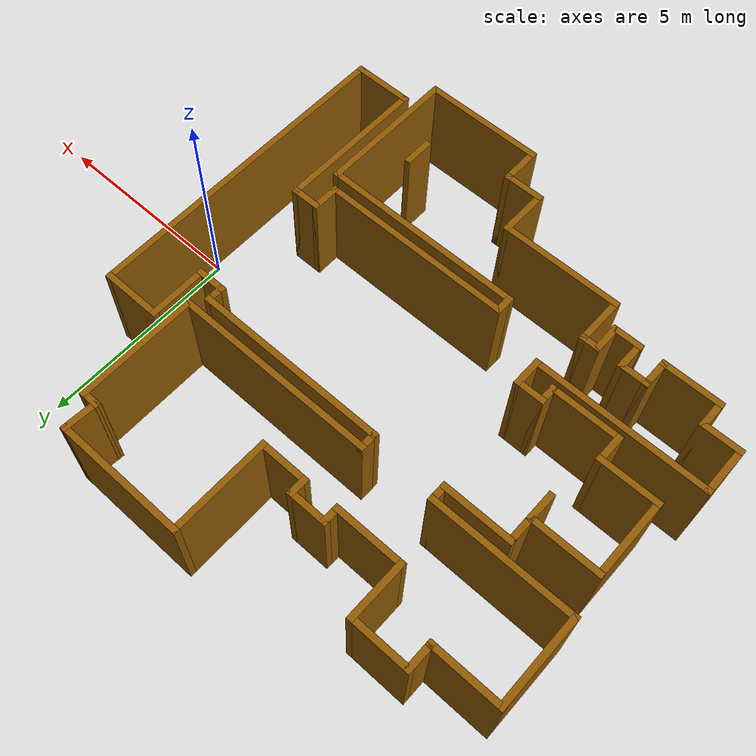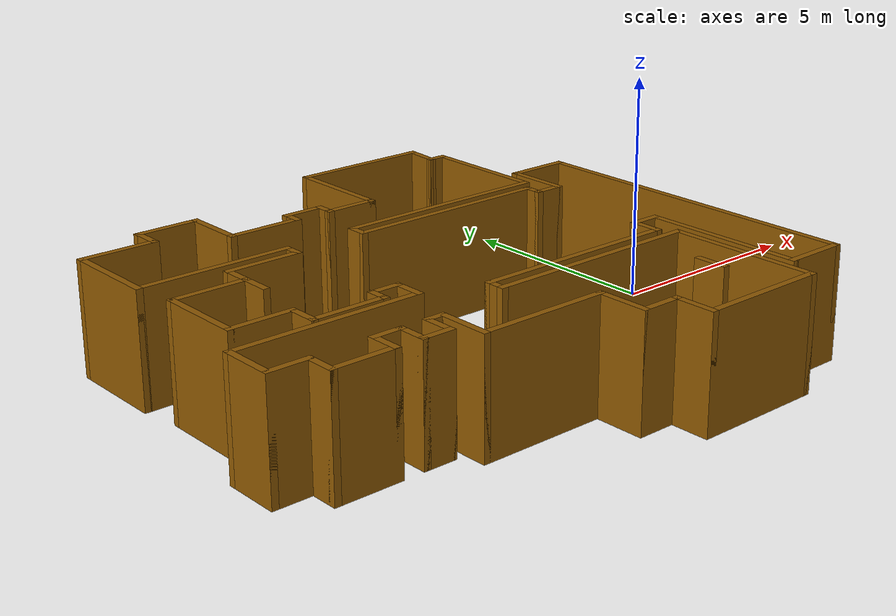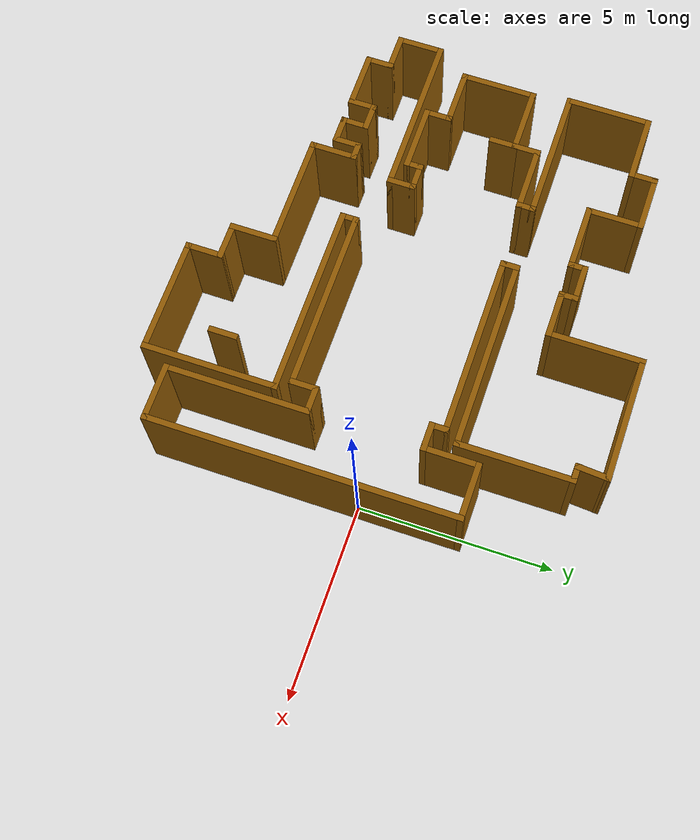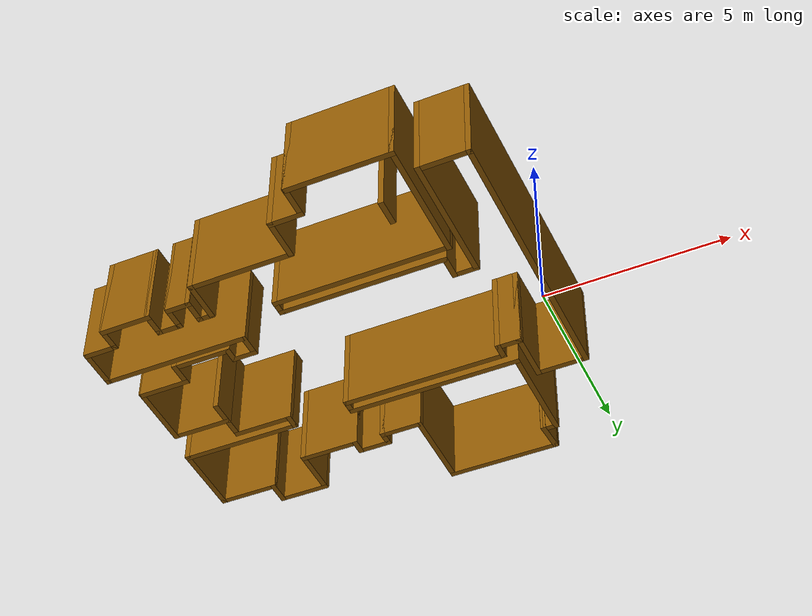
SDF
<?xml version='1.0'?>
<sdf version='1.6'>
  <model name='map_138'>
    <pose frame=''>-5.81102 -0.16081 0 0 -0 0</pose>
    <link name='Wall_0'>
      <collision name='Wall_0_Collision'>
        <geometry>
          <box>
            <size>3.25 0.15 2.5</size>
          </box>
        </geometry>
        <pose frame=''>0 0 1.25 0 -0 0</pose>
      </collision>
      <visual name='Wall_0_Visual'>
        <pose frame=''>0 0 1.25 0 -0 0</pose>
        <geometry>
          <box>
            <size>3.25 0.15 2.5</size>
          </box>
        </geometry>
        <material>
          <script>
            <uri>file://media/materials/scripts/gazebo.material</uri>
            <name>Gazebo/Grey</name>
          </script>
          <ambient>0.560784 0.34902 0.00784314 1</ambient>
        </material>
        <meta>
          <layer>0</layer>
        </meta>
      </visual>
      <pose frame=''>2.45 5.74759 0 0 -0 3.14159</pose>
    </link>
    <link name='Wall_1'>
      <collision name='Wall_1_Collision'>
        <geometry>
          <box>
            <size>2.5 0.15 2.5</size>
          </box>
        </geometry>
        <pose frame=''>0 0 1.25 0 -0 0</pose>
      </collision>
      <visual name='Wall_1_Visual'>
        <pose frame=''>0 0 1.25 0 -0 0</pose>
        <geometry>
          <box>
            <size>2.5 0.15 2.5</size>
          </box>
        </geometry>
        <material>
          <script>
            <uri>file://media/materials/scripts/gazebo.material</uri>
            <name>Gazebo/Grey</name>
          </script>
          <ambient>0.560784 0.34902 0.00784314 1</ambient>
        </material>
        <meta>
          <layer>0</layer>
        </meta>
      </visual>
      <pose frame=''>0.9 4.57259 0 0 -0 -1.5708</pose>
    </link>
    <link name='Wall_10'>
      <collision name='Wall_10_Collision'>
        <geometry>
          <box>
            <size>1.75 0.15 2.5</size>
          </box>
        </geometry>
        <pose frame=''>0 0 1.25 0 -0 0</pose>
      </collision>
      <visual name='Wall_10_Visual'>
        <pose frame=''>0 0 1.25 0 -0 0</pose>
        <geometry>
          <box>
            <size>1.75 0.15 2.5</size>
          </box>
        </geometry>
        <material>
          <script>
            <uri>file://media/materials/scripts/gazebo.material</uri>
            <name>Gazebo/Grey</name>
          </script>
          <ambient>0.560784 0.34902 0.00784314 1</ambient>
        </material>
        <meta>
          <layer>0</layer>
        </meta>
      </visual>
      <pose frame=''>-4.8 4.14759 0 0 -0 3.14159</pose>
    </link>
    <link name='Wall_11'>
      <collision name='Wall_11_Collision'>
        <geometry>
          <box>
            <size>2.25 0.15 2.5</size>
          </box>
        </geometry>
        <pose frame=''>0 0 1.25 0 -0 0</pose>
      </collision>
      <visual name='Wall_11_Visual'>
        <pose frame=''>0 0 1.25 0 -0 0</pose>
        <geometry>
          <box>
            <size>2.25 0.15 2.5</size>
          </box>
        </geometry>
        <material>
          <script>
            <uri>file://media/materials/scripts/gazebo.material</uri>
            <name>Gazebo/Grey</name>
          </script>
          <ambient>0.560784 0.34902 0.00784314 1</ambient>
        </material>
        <meta>
          <layer>0</layer>
        </meta>
      </visual>
      <pose frame=''>-5.6 3.09759 0 0 -0 -1.5708</pose>
    </link>
    <link name='Wall_12'>
      <collision name='Wall_12_Collision'>
        <geometry>
          <box>
            <size>3.5 0.15 2.5</size>
          </box>
        </geometry>
        <pose frame=''>0 0 1.25 0 -0 0</pose>
      </collision>
      <visual name='Wall_12_Visual'>
        <pose frame=''>0 0 1.25 0 -0 0</pose>
        <geometry>
          <box>
            <size>3.5 0.15 2.5</size>
          </box>
        </geometry>
        <material>
          <script>
            <uri>file://media/materials/scripts/gazebo.material</uri>
            <name>Gazebo/Grey</name>
          </script>
          <ambient>0.560784 0.34902 0.00784314 1</ambient>
        </material>
        <meta>
          <layer>0</layer>
        </meta>
      </visual>
      <pose frame=''>-3.925 2.04759 0 0 -0 0</pose>
    </link>
    <link name='Wall_13'>
      <collision name='Wall_13_Collision'>
        <geometry>
          <box>
            <size>0.5 0.15 2.5</size>
          </box>
        </geometry>
        <pose frame=''>0 0 1.25 0 -0 0</pose>
      </collision>
      <visual name='Wall_13_Visual'>
        <pose frame=''>0 0 1.25 0 -0 0</pose>
        <geometry>
          <box>
            <size>0.5 0.15 2.5</size>
          </box>
        </geometry>
        <material>
          <script>
            <uri>file://media/materials/scripts/gazebo.material</uri>
            <name>Gazebo/Grey</name>
          </script>
          <ambient>0.560784 0.34902 0.00784314 1</ambient>
        </material>
        <meta>
          <layer>0</layer>
        </meta>
      </visual>
      <pose frame=''>-2.25 1.87259 0 0 -0 -1.5708</pose>
    </link>
    <link name='Wall_14'>
      <collision name='Wall_14_Collision'>
        <geometry>
          <box>
            <size>1.75 0.15 2.5</size>
          </box>
        </geometry>
        <pose frame=''>0 0 1.25 0 -0 0</pose>
      </collision>
      <visual name='Wall_14_Visual'>
        <pose frame=''>0 0 1.25 0 -0 0</pose>
        <geometry>
          <box>
            <size>1.75 0.15 2.5</size>
          </box>
        </geometry>
        <material>
          <script>
            <uri>file://media/materials/scripts/gazebo.material</uri>
            <name>Gazebo/Grey</name>
          </script>
          <ambient>0.560784 0.34902 0.00784314 1</ambient>
        </material>
        <meta>
          <layer>0</layer>
        </meta>
      </visual>
      <pose frame=''>-3.05 1.69759 0 0 -0 3.14159</pose>
    </link>
    <link name='Wall_15'>
      <collision name='Wall_15_Collision'>
        <geometry>
          <box>
            <size>0.75 0.15 2.5</size>
          </box>
        </geometry>
        <pose frame=''>0 0 1.25 0 -0 0</pose>
      </collision>
      <visual name='Wall_15_Visual'>
        <pose frame=''>0 0 1.25 0 -0 0</pose>
        <geometry>
          <box>
            <size>0.75 0.15 2.5</size>
          </box>
        </geometry>
        <material>
          <script>
            <uri>file://media/materials/scripts/gazebo.material</uri>
            <name>Gazebo/Grey</name>
          </script>
          <ambient>0.560784 0.34902 0.00784314 1</ambient>
        </material>
        <meta>
          <layer>0</layer>
        </meta>
      </visual>
      <pose frame=''>-3.85 1.39759 0 0 -0 -1.5708</pose>
    </link>
    <link name='Wall_16'>
      <collision name='Wall_16_Collision'>
        <geometry>
          <box>
            <size>1.75 0.15 2.5</size>
          </box>
        </geometry>
        <pose frame=''>0 0 1.25 0 -0 0</pose>
      </collision>
      <visual name='Wall_16_Visual'>
        <pose frame=''>0 0 1.25 0 -0 0</pose>
        <geometry>
          <box>
            <size>1.75 0.15 2.5</size>
          </box>
        </geometry>
        <material>
          <script>
            <uri>file://media/materials/scripts/gazebo.material</uri>
            <name>Gazebo/Grey</name>
          </script>
          <ambient>0.560784 0.34902 0.00784314 1</ambient>
        </material>
        <meta>
          <layer>0</layer>
        </meta>
      </visual>
      <pose frame=''>-4.65 1.09759 0 0 -0 3.14159</pose>
    </link>
    <link name='Wall_17'>
      <collision name='Wall_17_Collision'>
        <geometry>
          <box>
            <size>2 0.15 2.5</size>
          </box>
        </geometry>
        <pose frame=''>0 0 1.25 0 -0 0</pose>
      </collision>
      <visual name='Wall_17_Visual'>
        <pose frame=''>0 0 1.25 0 -0 0</pose>
        <geometry>
          <box>
            <size>2 0.15 2.5</size>
          </box>
        </geometry>
        <material>
          <script>
            <uri>file://media/materials/scripts/gazebo.material</uri>
            <name>Gazebo/Grey</name>
          </script>
          <ambient>0.560784 0.34902 0.00784314 1</ambient>
        </material>
        <meta>
          <layer>0</layer>
        </meta>
      </visual>
      <pose frame=''>-5.45 0.172589 0 0 -0 -1.5708</pose>
    </link>
    <link name='Wall_18'>
      <collision name='Wall_18_Collision'>
        <geometry>
          <box>
            <size>1.5 0.15 2.5</size>
          </box>
        </geometry>
        <pose frame=''>0 0 1.25 0 -0 0</pose>
      </collision>
      <visual name='Wall_18_Visual'>
        <pose frame=''>0 0 1.25 0 -0 0</pose>
        <geometry>
          <box>
            <size>1.5 0.15 2.5</size>
          </box>
        </geometry>
        <material>
          <script>
            <uri>file://media/materials/scripts/gazebo.material</uri>
            <name>Gazebo/Grey</name>
          </script>
          <ambient>0.560784 0.34902 0.00784314 1</ambient>
        </material>
        <meta>
          <layer>0</layer>
        </meta>
      </visual>
      <pose frame=''>-4.775 -0.752411 0 0 -0 0</pose>
    </link>
    <link name='Wall_19'>
      <collision name='Wall_19_Collision'>
        <geometry>
          <box>
            <size>0.75 0.15 2.5</size>
          </box>
        </geometry>
        <pose frame=''>0 0 1.25 0 -0 0</pose>
      </collision>
      <visual name='Wall_19_Visual'>
        <pose frame=''>0 0 1.25 0 -0 0</pose>
        <geometry>
          <box>
            <size>0.75 0.15 2.5</size>
          </box>
        </geometry>
        <material>
          <script>
            <uri>file://media/materials/scripts/gazebo.material</uri>
            <name>Gazebo/Grey</name>
          </script>
          <ambient>0.560784 0.34902 0.00784314 1</ambient>
        </material>
        <meta>
          <layer>0</layer>
        </meta>
      </visual>
      <pose frame=''>-4.1 -1.05241 0 0 -0 -1.5708</pose>
    </link>
    <link name='Wall_2'>
      <collision name='Wall_2_Collision'>
        <geometry>
          <box>
            <size>1.25 0.15 2.5</size>
          </box>
        </geometry>
        <pose frame=''>0 0 1.25 0 -0 0</pose>
      </collision>
      <visual name='Wall_2_Visual'>
        <pose frame=''>0 0 1.25 0 -0 0</pose>
        <geometry>
          <box>
            <size>1.25 0.15 2.5</size>
          </box>
        </geometry>
        <material>
          <script>
            <uri>file://media/materials/scripts/gazebo.material</uri>
            <name>Gazebo/Grey</name>
          </script>
          <ambient>0.560784 0.34902 0.00784314 1</ambient>
        </material>
        <meta>
          <layer>0</layer>
        </meta>
      </visual>
      <pose frame=''>0.35 3.39759 0 0 -0 3.14159</pose>
    </link>
    <link name='Wall_20'>
      <collision name='Wall_20_Collision'>
        <geometry>
          <box>
            <size>1.75 0.15 2.5</size>
          </box>
        </geometry>
        <pose frame=''>0 0 1.25 0 -0 0</pose>
      </collision>
      <visual name='Wall_20_Visual'>
        <pose frame=''>0 0 1.25 0 -0 0</pose>
        <geometry>
          <box>
            <size>1.75 0.15 2.5</size>
          </box>
        </geometry>
        <material>
          <script>
            <uri>file://media/materials/scripts/gazebo.material</uri>
            <name>Gazebo/Grey</name>
          </script>
          <ambient>0.560784 0.34902 0.00784314 1</ambient>
        </material>
        <meta>
          <layer>0</layer>
        </meta>
      </visual>
      <pose frame=''>-3.3 -1.35241 0 0 -0 0</pose>
    </link>
    <link name='Wall_21'>
      <collision name='Wall_21_Collision'>
        <geometry>
          <box>
            <size>0.5 0.15 2.5</size>
          </box>
        </geometry>
        <pose frame=''>0 0 1.25 0 -0 0</pose>
      </collision>
      <visual name='Wall_21_Visual'>
        <pose frame=''>0 0 1.25 0 -0 0</pose>
        <geometry>
          <box>
            <size>0.5 0.15 2.5</size>
          </box>
        </geometry>
        <material>
          <script>
            <uri>file://media/materials/scripts/gazebo.material</uri>
            <name>Gazebo/Grey</name>
          </script>
          <ambient>0.560784 0.34902 0.00784314 1</ambient>
        </material>
        <meta>
          <layer>0</layer>
        </meta>
      </visual>
      <pose frame=''>-2.5 -1.17741 0 0 -0 1.5708</pose>
    </link>
    <link name='Wall_22'>
      <collision name='Wall_22_Collision'>
        <geometry>
          <box>
            <size>0.75 0.15 2.5</size>
          </box>
        </geometry>
        <pose frame=''>0 0 1.25 0 -0 0</pose>
      </collision>
      <visual name='Wall_22_Visual'>
        <pose frame=''>0 0 1.25 0 -0 0</pose>
        <geometry>
          <box>
            <size>0.75 0.15 2.5</size>
          </box>
        </geometry>
        <material>
          <script>
            <uri>file://media/materials/scripts/gazebo.material</uri>
            <name>Gazebo/Grey</name>
          </script>
          <ambient>0.560784 0.34902 0.00784314 1</ambient>
        </material>
        <meta>
          <layer>0</layer>
        </meta>
      </visual>
      <pose frame=''>-2.2 -1.00241 0 0 -0 0</pose>
    </link>
    <link name='Wall_23'>
      <collision name='Wall_23_Collision'>
        <geometry>
          <box>
            <size>0.75 0.15 2.5</size>
          </box>
        </geometry>
        <pose frame=''>0 0 1.25 0 -0 0</pose>
      </collision>
      <visual name='Wall_23_Visual'>
        <pose frame=''>0 0 1.25 0 -0 0</pose>
        <geometry>
          <box>
            <size>0.75 0.15 2.5</size>
          </box>
        </geometry>
        <material>
          <script>
            <uri>file://media/materials/scripts/gazebo.material</uri>
            <name>Gazebo/Grey</name>
          </script>
          <ambient>0.560784 0.34902 0.00784314 1</ambient>
        </material>
        <meta>
          <layer>0</layer>
        </meta>
      </visual>
      <pose frame=''>-1.9 -1.30241 0 0 -0 -1.5708</pose>
    </link>
    <link name='Wall_24'>
      <collision name='Wall_24_Collision'>
        <geometry>
          <box>
            <size>4.25 0.15 2.5</size>
          </box>
        </geometry>
        <pose frame=''>0 0 1.25 0 -0 0</pose>
      </collision>
      <visual name='Wall_24_Visual'>
        <pose frame=''>0 0 1.25 0 -0 0</pose>
        <geometry>
          <box>
            <size>4.25 0.15 2.5</size>
          </box>
        </geometry>
        <material>
          <script>
            <uri>file://media/materials/scripts/gazebo.material</uri>
            <name>Gazebo/Grey</name>
          </script>
          <ambient>0.560784 0.34902 0.00784314 1</ambient>
        </material>
        <meta>
          <layer>0</layer>
        </meta>
      </visual>
      <pose frame=''>-3.95 -1.60241 0 0 -0 3.14159</pose>
    </link>
    <link name='Wall_25'>
      <collision name='Wall_25_Collision'>
        <geometry>
          <box>
            <size>1.25 0.15 2.5</size>
          </box>
        </geometry>
        <pose frame=''>0 0 1.25 0 -0 0</pose>
      </collision>
      <visual name='Wall_25_Visual'>
        <pose frame=''>0 0 1.25 0 -0 0</pose>
        <geometry>
          <box>
            <size>1.25 0.15 2.5</size>
          </box>
        </geometry>
        <material>
          <script>
            <uri>file://media/materials/scripts/gazebo.material</uri>
            <name>Gazebo/Grey</name>
          </script>
          <ambient>0.560784 0.34902 0.00784314 1</ambient>
        </material>
        <meta>
          <layer>0</layer>
        </meta>
      </visual>
      <pose frame=''>-6 -2.15241 0 0 -0 -1.5708</pose>
    </link>
    <link name='Wall_26'>
      <collision name='Wall_26_Collision'>
        <geometry>
          <box>
            <size>1 0.15 2.5</size>
          </box>
        </geometry>
        <pose frame=''>0 0 1.25 0 -0 0</pose>
      </collision>
      <visual name='Wall_26_Visual'>
        <pose frame=''>0 0 1.25 0 -0 0</pose>
        <geometry>
          <box>
            <size>1 0.15 2.5</size>
          </box>
        </geometry>
        <material>
          <script>
            <uri>file://media/materials/scripts/gazebo.material</uri>
            <name>Gazebo/Grey</name>
          </script>
          <ambient>0.560784 0.34902 0.00784314 1</ambient>
        </material>
        <meta>
          <layer>0</layer>
        </meta>
      </visual>
      <pose frame=''>-5.575 -2.70241 0 0 -0 0</pose>
    </link>
    <link name='Wall_27'>
      <collision name='Wall_27_Collision'>
        <geometry>
          <box>
            <size>0.75 0.15 2.5</size>
          </box>
        </geometry>
        <pose frame=''>0 0 1.25 0 -0 0</pose>
      </collision>
      <visual name='Wall_27_Visual'>
        <pose frame=''>0 0 1.25 0 -0 0</pose>
        <geometry>
          <box>
            <size>0.75 0.15 2.5</size>
          </box>
        </geometry>
        <material>
          <script>
            <uri>file://media/materials/scripts/gazebo.material</uri>
            <name>Gazebo/Grey</name>
          </script>
          <ambient>0.560784 0.34902 0.00784314 1</ambient>
        </material>
        <meta>
          <layer>0</layer>
        </meta>
      </visual>
      <pose frame=''>-5.15 -3.00241 0 0 -0 -1.5708</pose>
    </link>
    <link name='Wall_28'>
      <collision name='Wall_28_Collision'>
        <geometry>
          <box>
            <size>1.5 0.15 2.5</size>
          </box>
        </geometry>
        <pose frame=''>0 0 1.25 0 -0 0</pose>
      </collision>
      <visual name='Wall_28_Visual'>
        <pose frame=''>0 0 1.25 0 -0 0</pose>
        <geometry>
          <box>
            <size>1.5 0.15 2.5</size>
          </box>
        </geometry>
        <material>
          <script>
            <uri>file://media/materials/scripts/gazebo.material</uri>
            <name>Gazebo/Grey</name>
          </script>
          <ambient>0.560784 0.34902 0.00784314 1</ambient>
        </material>
        <meta>
          <layer>0</layer>
        </meta>
      </visual>
      <pose frame=''>-4.475 -3.30241 0 0 -0 0</pose>
    </link>
    <link name='Wall_29'>
      <collision name='Wall_29_Collision'>
        <geometry>
          <box>
            <size>0.75 0.15 2.5</size>
          </box>
        </geometry>
        <pose frame=''>0 0 1.25 0 -0 0</pose>
      </collision>
      <visual name='Wall_29_Visual'>
        <pose frame=''>0 0 1.25 0 -0 0</pose>
        <geometry>
          <box>
            <size>0.75 0.15 2.5</size>
          </box>
        </geometry>
        <material>
          <script>
            <uri>file://media/materials/scripts/gazebo.material</uri>
            <name>Gazebo/Grey</name>
          </script>
          <ambient>0.560784 0.34902 0.00784314 1</ambient>
        </material>
        <meta>
          <layer>0</layer>
        </meta>
      </visual>
      <pose frame=''>-3.8 -3.00241 0 0 -0 1.5708</pose>
    </link>
    <link name='Wall_3'>
      <collision name='Wall_3_Collision'>
        <geometry>
          <box>
            <size>0.5 0.15 2.5</size>
          </box>
        </geometry>
        <pose frame=''>0 0 1.25 0 -0 0</pose>
      </collision>
      <visual name='Wall_3_Visual'>
        <pose frame=''>0 0 1.25 0 -0 0</pose>
        <geometry>
          <box>
            <size>0.5 0.15 2.5</size>
          </box>
        </geometry>
        <material>
          <script>
            <uri>file://media/materials/scripts/gazebo.material</uri>
            <name>Gazebo/Grey</name>
          </script>
          <ambient>0.560784 0.34902 0.00784314 1</ambient>
        </material>
        <meta>
          <layer>0</layer>
        </meta>
      </visual>
      <pose frame=''>-0.2 3.57259 0 0 -0 1.5708</pose>
    </link>
    <link name='Wall_30'>
      <collision name='Wall_30_Collision'>
        <geometry>
          <box>
            <size>0.75 0.15 2.5</size>
          </box>
        </geometry>
        <pose frame=''>0 0 1.25 0 -0 0</pose>
      </collision>
      <visual name='Wall_30_Visual'>
        <pose frame=''>0 0 1.25 0 -0 0</pose>
        <geometry>
          <box>
            <size>0.75 0.15 2.5</size>
          </box>
        </geometry>
        <material>
          <script>
            <uri>file://media/materials/scripts/gazebo.material</uri>
            <name>Gazebo/Grey</name>
          </script>
          <ambient>0.560784 0.34902 0.00784314 1</ambient>
        </material>
        <meta>
          <layer>0</layer>
        </meta>
      </visual>
      <pose frame=''>-3.5 -2.70241 0 0 -0 0</pose>
    </link>
    <link name='Wall_31'>
      <collision name='Wall_31_Collision'>
        <geometry>
          <box>
            <size>0.75 0.15 2.5</size>
          </box>
        </geometry>
        <pose frame=''>0 0 1.25 0 -0 0</pose>
      </collision>
      <visual name='Wall_31_Visual'>
        <pose frame=''>0 0 1.25 0 -0 0</pose>
        <geometry>
          <box>
            <size>0.75 0.15 2.5</size>
          </box>
        </geometry>
        <material>
          <script>
            <uri>file://media/materials/scripts/gazebo.material</uri>
            <name>Gazebo/Grey</name>
          </script>
          <ambient>0.560784 0.34902 0.00784314 1</ambient>
        </material>
        <meta>
          <layer>0</layer>
        </meta>
      </visual>
      <pose frame=''>-3.2 -3.00241 0 0 -0 -1.5708</pose>
    </link>
    <link name='Wall_32'>
      <collision name='Wall_32_Collision'>
        <geometry>
          <box>
            <size>0.75 0.15 2.5</size>
          </box>
        </geometry>
        <pose frame=''>0 0 1.25 0 -0 0</pose>
      </collision>
      <visual name='Wall_32_Visual'>
        <pose frame=''>0 0 1.25 0 -0 0</pose>
        <geometry>
          <box>
            <size>0.75 0.15 2.5</size>
          </box>
        </geometry>
        <material>
          <script>
            <uri>file://media/materials/scripts/gazebo.material</uri>
            <name>Gazebo/Grey</name>
          </script>
          <ambient>0.560784 0.34902 0.00784314 1</ambient>
        </material>
        <meta>
          <layer>0</layer>
        </meta>
      </visual>
      <pose frame=''>-2.9 -3.30241 0 0 -0 0</pose>
    </link>
    <link name='Wall_33'>
      <collision name='Wall_33_Collision'>
        <geometry>
          <box>
            <size>0.75 0.15 2.5</size>
          </box>
        </geometry>
        <pose frame=''>0 0 1.25 0 -0 0</pose>
      </collision>
      <visual name='Wall_33_Visual'>
        <pose frame=''>0 0 1.25 0 -0 0</pose>
        <geometry>
          <box>
            <size>0.75 0.15 2.5</size>
          </box>
        </geometry>
        <material>
          <script>
            <uri>file://media/materials/scripts/gazebo.material</uri>
            <name>Gazebo/Grey</name>
          </script>
          <ambient>0.560784 0.34902 0.00784314 1</ambient>
        </material>
        <meta>
          <layer>0</layer>
        </meta>
      </visual>
      <pose frame=''>-2.6 -3.00241 0 0 -0 1.5708</pose>
    </link>
    <link name='Wall_34'>
      <collision name='Wall_34_Collision'>
        <geometry>
          <box>
            <size>0.5 0.15 2.5</size>
          </box>
        </geometry>
        <pose frame=''>0 0 1.25 0 -0 0</pose>
      </collision>
      <visual name='Wall_34_Visual'>
        <pose frame=''>0 0 1.25 0 -0 0</pose>
        <geometry>
          <box>
            <size>0.5 0.15 2.5</size>
          </box>
        </geometry>
        <material>
          <script>
            <uri>file://media/materials/scripts/gazebo.material</uri>
            <name>Gazebo/Grey</name>
          </script>
          <ambient>0.560784 0.34902 0.00784314 1</ambient>
        </material>
        <meta>
          <layer>0</layer>
        </meta>
      </visual>
      <pose frame=''>-2.425 -2.70241 0 0 -0 0</pose>
    </link>
    <link name='Wall_38'>
      <collision name='Wall_38_Collision'>
        <geometry>
          <box>
            <size>1 0.15 2.5</size>
          </box>
        </geometry>
        <pose frame=''>0 0 1.25 0 -0 0</pose>
      </collision>
      <visual name='Wall_38_Visual'>
        <pose frame=''>0 0 1.25 0 -0 0</pose>
        <geometry>
          <box>
            <size>1 0.15 2.5</size>
          </box>
        </geometry>
        <material>
          <script>
            <uri>file://media/materials/scripts/gazebo.material</uri>
            <name>Gazebo/Grey</name>
          </script>
          <ambient>0.560784 0.34902 0.00784314 1</ambient>
        </material>
        <meta>
          <layer>0</layer>
        </meta>
      </visual>
      <pose frame=''>1.025 -4.90241 0 0 -0 0</pose>
    </link>
    <link name='Wall_39'>
      <collision name='Wall_39_Collision'>
        <geometry>
          <box>
            <size>1 0.15 2.5</size>
          </box>
        </geometry>
        <pose frame=''>0 0 1.25 0 -0 0</pose>
      </collision>
      <visual name='Wall_39_Visual'>
        <pose frame=''>0 0 1.25 0 -0 0</pose>
        <geometry>
          <box>
            <size>1 0.15 2.5</size>
          </box>
        </geometry>
        <material>
          <script>
            <uri>file://media/materials/scripts/gazebo.material</uri>
            <name>Gazebo/Grey</name>
          </script>
          <ambient>0.560784 0.34902 0.00784314 1</ambient>
        </material>
        <meta>
          <layer>0</layer>
        </meta>
      </visual>
      <pose frame=''>1.45 -5.32741 0 0 -0 -1.5708</pose>
    </link>
    <link name='Wall_4'>
      <collision name='Wall_4_Collision'>
        <geometry>
          <box>
            <size>1 0.15 2.5</size>
          </box>
        </geometry>
        <pose frame=''>0 0 1.25 0 -0 0</pose>
      </collision>
      <visual name='Wall_4_Visual'>
        <pose frame=''>0 0 1.25 0 -0 0</pose>
        <geometry>
          <box>
            <size>1 0.15 2.5</size>
          </box>
        </geometry>
        <material>
          <script>
            <uri>file://media/materials/scripts/gazebo.material</uri>
            <name>Gazebo/Grey</name>
          </script>
          <ambient>0.560784 0.34902 0.00784314 1</ambient>
        </material>
        <meta>
          <layer>0</layer>
        </meta>
      </visual>
      <pose frame=''>-0.625 3.74759 0 0 -0 3.14159</pose>
    </link>
    <link name='Wall_40'>
      <collision name='Wall_40_Collision'>
        <geometry>
          <box>
            <size>3 0.15 2.5</size>
          </box>
        </geometry>
        <pose frame=''>0 0 1.25 0 -0 0</pose>
      </collision>
      <visual name='Wall_40_Visual'>
        <pose frame=''>0 0 1.25 0 -0 0</pose>
        <geometry>
          <box>
            <size>3 0.15 2.5</size>
          </box>
        </geometry>
        <material>
          <script>
            <uri>file://media/materials/scripts/gazebo.material</uri>
            <name>Gazebo/Grey</name>
          </script>
          <ambient>0.560784 0.34902 0.00784314 1</ambient>
        </material>
        <meta>
          <layer>0</layer>
        </meta>
      </visual>
      <pose frame=''>2.875 -5.75241 0 0 -0 0</pose>
    </link>
    <link name='Wall_41'>
      <collision name='Wall_41_Collision'>
        <geometry>
          <box>
            <size>3.5 0.15 2.5</size>
          </box>
        </geometry>
        <pose frame=''>0 0 1.25 0 -0 0</pose>
      </collision>
      <visual name='Wall_41_Visual'>
        <pose frame=''>0 0 1.25 0 -0 0</pose>
        <geometry>
          <box>
            <size>3.5 0.15 2.5</size>
          </box>
        </geometry>
        <material>
          <script>
            <uri>file://media/materials/scripts/gazebo.material</uri>
            <name>Gazebo/Grey</name>
          </script>
          <ambient>0.560784 0.34902 0.00784314 1</ambient>
        </material>
        <meta>
          <layer>0</layer>
        </meta>
      </visual>
      <pose frame=''>4.3 -4.07741 0 0 -0 1.5708</pose>
    </link>
    <link name='Wall_42'>
      <collision name='Wall_42_Collision'>
        <geometry>
          <box>
            <size>5 0.15 2.5</size>
          </box>
        </geometry>
        <pose frame=''>0 0 1.25 0 -0 0</pose>
      </collision>
      <visual name='Wall_42_Visual'>
        <pose frame=''>0 0 1.25 0 -0 0</pose>
        <geometry>
          <box>
            <size>5 0.15 2.5</size>
          </box>
        </geometry>
        <material>
          <script>
            <uri>file://media/materials/scripts/gazebo.material</uri>
            <name>Gazebo/Grey</name>
          </script>
          <ambient>0.560784 0.34902 0.00784314 1</ambient>
        </material>
        <meta>
          <layer>0</layer>
        </meta>
      </visual>
      <pose frame=''>1.875 -2.40241 0 0 -0 3.14159</pose>
    </link>
    <link name='Wall_43'>
      <collision name='Wall_43_Collision'>
        <geometry>
          <box>
            <size>0.5 0.15 2.5</size>
          </box>
        </geometry>
        <pose frame=''>0 0 1.25 0 -0 0</pose>
      </collision>
      <visual name='Wall_43_Visual'>
        <pose frame=''>0 0 1.25 0 -0 0</pose>
        <geometry>
          <box>
            <size>0.5 0.15 2.5</size>
          </box>
        </geometry>
        <material>
          <script>
            <uri>file://media/materials/scripts/gazebo.material</uri>
            <name>Gazebo/Grey</name>
          </script>
          <ambient>0.560784 0.34902 0.00784314 1</ambient>
        </material>
        <meta>
          <layer>0</layer>
        </meta>
      </visual>
      <pose frame=''>-0.55 -2.22741 0 0 -0 1.5708</pose>
    </link>
    <link name='Wall_44'>
      <collision name='Wall_44_Collision'>
        <geometry>
          <box>
            <size>4.75 0.15 2.5</size>
          </box>
        </geometry>
        <pose frame=''>0 0 1.25 0 -0 0</pose>
      </collision>
      <visual name='Wall_44_Visual'>
        <pose frame=''>0 0 1.25 0 -0 0</pose>
        <geometry>
          <box>
            <size>4.75 0.15 2.5</size>
          </box>
        </geometry>
        <material>
          <script>
            <uri>file://media/materials/scripts/gazebo.material</uri>
            <name>Gazebo/Grey</name>
          </script>
          <ambient>0.560784 0.34902 0.00784314 1</ambient>
        </material>
        <meta>
          <layer>0</layer>
        </meta>
      </visual>
      <pose frame=''>1.75 -2.05241 0 0 -0 0</pose>
    </link>
    <link name='Wall_45'>
      <collision name='Wall_45_Collision'>
        <geometry>
          <box>
            <size>0.75 0.15 2.5</size>
          </box>
        </geometry>
        <pose frame=''>0 0 1.25 0 -0 0</pose>
      </collision>
      <visual name='Wall_45_Visual'>
        <pose frame=''>0 0 1.25 0 -0 0</pose>
        <geometry>
          <box>
            <size>0.75 0.15 2.5</size>
          </box>
        </geometry>
        <material>
          <script>
            <uri>file://media/materials/scripts/gazebo.material</uri>
            <name>Gazebo/Grey</name>
          </script>
          <ambient>0.560784 0.34902 0.00784314 1</ambient>
        </material>
        <meta>
          <layer>0</layer>
        </meta>
      </visual>
      <pose frame=''>4.05 -1.75241 0 0 -0 1.5708</pose>
    </link>
    <link name='Wall_46'>
      <collision name='Wall_46_Collision'>
        <geometry>
          <box>
            <size>0.75 0.15 2.5</size>
          </box>
        </geometry>
        <pose frame=''>0 0 1.25 0 -0 0</pose>
      </collision>
      <visual name='Wall_46_Visual'>
        <pose frame=''>0 0 1.25 0 -0 0</pose>
        <geometry>
          <box>
            <size>0.75 0.15 2.5</size>
          </box>
        </geometry>
        <material>
          <script>
            <uri>file://media/materials/scripts/gazebo.material</uri>
            <name>Gazebo/Grey</name>
          </script>
          <ambient>0.560784 0.34902 0.00784314 1</ambient>
        </material>
        <meta>
          <layer>0</layer>
        </meta>
      </visual>
      <pose frame=''>4.35 -1.45241 0 0 -0 0</pose>
    </link>
    <link name='Wall_47'>
      <collision name='Wall_47_Collision'>
        <geometry>
          <box>
            <size>3.75 0.15 2.5</size>
          </box>
        </geometry>
        <pose frame=''>0 0 1.25 0 -0 0</pose>
      </collision>
      <visual name='Wall_47_Visual'>
        <pose frame=''>0 0 1.25 0 -0 0</pose>
        <geometry>
          <box>
            <size>3.75 0.15 2.5</size>
          </box>
        </geometry>
        <material>
          <script>
            <uri>file://media/materials/scripts/gazebo.material</uri>
            <name>Gazebo/Grey</name>
          </script>
          <ambient>0.560784 0.34902 0.00784314 1</ambient>
        </material>
        <meta>
          <layer>0</layer>
        </meta>
      </visual>
      <pose frame=''>4.65 -3.25241 0 0 -0 -1.5708</pose>
    </link>
    <link name='Wall_48'>
      <collision name='Wall_48_Collision'>
        <geometry>
          <box>
            <size>1.5 0.15 2.5</size>
          </box>
        </geometry>
        <pose frame=''>0 0 1.25 0 -0 0</pose>
      </collision>
      <visual name='Wall_48_Visual'>
        <pose frame=''>0 0 1.25 0 -0 0</pose>
        <geometry>
          <box>
            <size>1.5 0.15 2.5</size>
          </box>
        </geometry>
        <material>
          <script>
            <uri>file://media/materials/scripts/gazebo.material</uri>
            <name>Gazebo/Grey</name>
          </script>
          <ambient>0.560784 0.34902 0.00784314 1</ambient>
        </material>
        <meta>
          <layer>0</layer>
        </meta>
      </visual>
      <pose frame=''>5.325 -5.05241 0 0 -0 0</pose>
    </link>
    <link name='Wall_49'>
      <collision name='Wall_49_Collision'>
        <geometry>
          <box>
            <size>8 0.15 2.5</size>
          </box>
        </geometry>
        <pose frame=''>0 0 1.25 0 -0 0</pose>
      </collision>
      <visual name='Wall_49_Visual'>
        <pose frame=''>0 0 1.25 0 -0 0</pose>
        <geometry>
          <box>
            <size>8 0.15 2.5</size>
          </box>
        </geometry>
        <material>
          <script>
            <uri>file://media/materials/scripts/gazebo.material</uri>
            <name>Gazebo/Grey</name>
          </script>
          <ambient>0.560784 0.34902 0.00784314 1</ambient>
        </material>
        <meta>
          <layer>0</layer>
        </meta>
      </visual>
      <pose frame=''>6 -1.12741 0 0 -0 1.5708</pose>
    </link>
    <link name='Wall_5'>
      <collision name='Wall_5_Collision'>
        <geometry>
          <box>
            <size>0.5 0.15 2.5</size>
          </box>
        </geometry>
        <pose frame=''>0 0 1.25 0 -0 0</pose>
      </collision>
      <visual name='Wall_5_Visual'>
        <pose frame=''>0 0 1.25 0 -0 0</pose>
        <geometry>
          <box>
            <size>0.5 0.15 2.5</size>
          </box>
        </geometry>
        <material>
          <script>
            <uri>file://media/materials/scripts/gazebo.material</uri>
            <name>Gazebo/Grey</name>
          </script>
          <ambient>0.560784 0.34902 0.00784314 1</ambient>
        </material>
        <meta>
          <layer>0</layer>
        </meta>
      </visual>
      <pose frame=''>-1.05 3.57259 0 0 -0 -1.5708</pose>
    </link>
    <link name='Wall_50'>
      <collision name='Wall_50_Collision'>
        <geometry>
          <box>
            <size>1.5 0.15 2.5</size>
          </box>
        </geometry>
        <pose frame=''>0 0 1.25 0 -0 0</pose>
      </collision>
      <visual name='Wall_50_Visual'>
        <pose frame=''>0 0 1.25 0 -0 0</pose>
        <geometry>
          <box>
            <size>1.5 0.15 2.5</size>
          </box>
        </geometry>
        <material>
          <script>
            <uri>file://media/materials/scripts/gazebo.material</uri>
            <name>Gazebo/Grey</name>
          </script>
          <ambient>0.560784 0.34902 0.00784314 1</ambient>
        </material>
        <meta>
          <layer>0</layer>
        </meta>
      </visual>
      <pose frame=''>5.325 2.79759 0 0 -0 3.14159</pose>
    </link>
    <link name='Wall_51'>
      <collision name='Wall_51_Collision'>
        <geometry>
          <box>
            <size>1.5 0.15 2.5</size>
          </box>
        </geometry>
        <pose frame=''>0 0 1.25 0 -0 0</pose>
      </collision>
      <visual name='Wall_51_Visual'>
        <pose frame=''>0 0 1.25 0 -0 0</pose>
        <geometry>
          <box>
            <size>1.5 0.15 2.5</size>
          </box>
        </geometry>
        <material>
          <script>
            <uri>file://media/materials/scripts/gazebo.material</uri>
            <name>Gazebo/Grey</name>
          </script>
          <ambient>0.560784 0.34902 0.00784314 1</ambient>
        </material>
        <meta>
          <layer>0</layer>
        </meta>
      </visual>
      <pose frame=''>4.65 2.12259 0 0 -0 -1.5708</pose>
    </link>
    <link name='Wall_54'>
      <collision name='Wall_54_Collision'>
        <geometry>
          <box>
            <size>0.75 0.15 2.5</size>
          </box>
        </geometry>
        <pose frame=''>0 0 1.25 0 -0 0</pose>
      </collision>
      <visual name='Wall_54_Visual'>
        <pose frame=''>0 0 1.25 0 -0 0</pose>
        <geometry>
          <box>
            <size>0.75 0.15 2.5</size>
          </box>
        </geometry>
        <material>
          <script>
            <uri>file://media/materials/scripts/gazebo.material</uri>
            <name>Gazebo/Grey</name>
          </script>
          <ambient>0.560784 0.34902 0.00784314 1</ambient>
        </material>
        <meta>
          <layer>0</layer>
        </meta>
      </visual>
      <pose frame=''>4.35 1.44759 0 0 -0 3.14159</pose>
    </link>
    <link name='Wall_55'>
      <collision name='Wall_55_Collision'>
        <geometry>
          <box>
            <size>0.5 0.15 2.5</size>
          </box>
        </geometry>
        <pose frame=''>0 0 1.25 0 -0 0</pose>
      </collision>
      <visual name='Wall_55_Visual'>
        <pose frame=''>0 0 1.25 0 -0 0</pose>
        <geometry>
          <box>
            <size>0.5 0.15 2.5</size>
          </box>
        </geometry>
        <material>
          <script>
            <uri>file://media/materials/scripts/gazebo.material</uri>
            <name>Gazebo/Grey</name>
          </script>
          <ambient>0.560784 0.34902 0.00784314 1</ambient>
        </material>
        <meta>
          <layer>0</layer>
        </meta>
      </visual>
      <pose frame=''>4.05 1.62259 0 0 -0 1.5708</pose>
    </link>
    <link name='Wall_56'>
      <collision name='Wall_56_Collision'>
        <geometry>
          <box>
            <size>4.75 0.15 2.5</size>
          </box>
        </geometry>
        <pose frame=''>0 0 1.25 0 -0 0</pose>
      </collision>
      <visual name='Wall_56_Visual'>
        <pose frame=''>0 0 1.25 0 -0 0</pose>
        <geometry>
          <box>
            <size>4.75 0.15 2.5</size>
          </box>
        </geometry>
        <material>
          <script>
            <uri>file://media/materials/scripts/gazebo.material</uri>
            <name>Gazebo/Grey</name>
          </script>
          <ambient>0.560784 0.34902 0.00784314 1</ambient>
        </material>
        <meta>
          <layer>0</layer>
        </meta>
      </visual>
      <pose frame=''>1.75 1.79759 0 0 -0 3.14159</pose>
    </link>
    <link name='Wall_57'>
      <collision name='Wall_57_Collision'>
        <geometry>
          <box>
            <size>0.5 0.15 2.5</size>
          </box>
        </geometry>
        <pose frame=''>0 0 1.25 0 -0 0</pose>
      </collision>
      <visual name='Wall_57_Visual'>
        <pose frame=''>0 0 1.25 0 -0 0</pose>
        <geometry>
          <box>
            <size>0.5 0.15 2.5</size>
          </box>
        </geometry>
        <material>
          <script>
            <uri>file://media/materials/scripts/gazebo.material</uri>
            <name>Gazebo/Grey</name>
          </script>
          <ambient>0.560784 0.34902 0.00784314 1</ambient>
        </material>
        <meta>
          <layer>0</layer>
        </meta>
      </visual>
      <pose frame=''>-0.55 1.97259 0 0 -0 1.5708</pose>
    </link>
    <link name='Wall_58'>
      <collision name='Wall_58_Collision'>
        <geometry>
          <box>
            <size>5 0.15 2.5</size>
          </box>
        </geometry>
        <pose frame=''>0 0 1.25 0 -0 0</pose>
      </collision>
      <visual name='Wall_58_Visual'>
        <pose frame=''>0 0 1.25 0 -0 0</pose>
        <geometry>
          <box>
            <size>5 0.15 2.5</size>
          </box>
        </geometry>
        <material>
          <script>
            <uri>file://media/materials/scripts/gazebo.material</uri>
            <name>Gazebo/Grey</name>
          </script>
          <ambient>0.560784 0.34902 0.00784314 1</ambient>
        </material>
        <meta>
          <layer>0</layer>
        </meta>
      </visual>
      <pose frame=''>1.875 2.14759 0 0 -0 0</pose>
    </link>
    <link name='Wall_59'>
      <collision name='Wall_59_Collision'>
        <geometry>
          <box>
            <size>3 0.15 2.5</size>
          </box>
        </geometry>
        <pose frame=''>0 0 1.25 0 -0 0</pose>
      </collision>
      <visual name='Wall_59_Visual'>
        <pose frame=''>0 0 1.25 0 -0 0</pose>
        <geometry>
          <box>
            <size>3 0.15 2.5</size>
          </box>
        </geometry>
        <material>
          <script>
            <uri>file://media/materials/scripts/gazebo.material</uri>
            <name>Gazebo/Grey</name>
          </script>
          <ambient>0.560784 0.34902 0.00784314 1</ambient>
        </material>
        <meta>
          <layer>0</layer>
        </meta>
      </visual>
      <pose frame=''>4.3 3.57259 0 0 -0 1.5708</pose>
    </link>
    <link name='Wall_6'>
      <collision name='Wall_6_Collision'>
        <geometry>
          <box>
            <size>1.75 0.15 2.5</size>
          </box>
        </geometry>
        <pose frame=''>0 0 1.25 0 -0 0</pose>
      </collision>
      <visual name='Wall_6_Visual'>
        <pose frame=''>0 0 1.25 0 -0 0</pose>
        <geometry>
          <box>
            <size>1.75 0.15 2.5</size>
          </box>
        </geometry>
        <material>
          <script>
            <uri>file://media/materials/scripts/gazebo.material</uri>
            <name>Gazebo/Grey</name>
          </script>
          <ambient>0.560784 0.34902 0.00784314 1</ambient>
        </material>
        <meta>
          <layer>0</layer>
        </meta>
      </visual>
      <pose frame=''>-1.85 3.39759 0 0 -0 3.14159</pose>
    </link>
    <link name='Wall_60'>
      <collision name='Wall_60_Collision'>
        <geometry>
          <box>
            <size>0.5 0.15 2.5</size>
          </box>
        </geometry>
        <pose frame=''>0 0 1.25 0 -0 0</pose>
      </collision>
      <visual name='Wall_60_Visual'>
        <pose frame=''>0 0 1.25 0 -0 0</pose>
        <geometry>
          <box>
            <size>0.5 0.15 2.5</size>
          </box>
        </geometry>
        <material>
          <script>
            <uri>file://media/materials/scripts/gazebo.material</uri>
            <name>Gazebo/Grey</name>
          </script>
          <ambient>0.560784 0.34902 0.00784314 1</ambient>
        </material>
        <meta>
          <layer>0</layer>
        </meta>
      </visual>
      <pose frame=''>4.125 4.99759 0 0 -0 3.14159</pose>
    </link>
    <link name='Wall_61'>
      <collision name='Wall_61_Collision'>
        <geometry>
          <box>
            <size>0.901665 0.15 2.5</size>
          </box>
        </geometry>
        <pose frame=''>0 0 1.25 0 -0 0</pose>
      </collision>
      <visual name='Wall_61_Visual'>
        <pose frame=''>0 0 1.25 0 -0 0</pose>
        <geometry>
          <box>
            <size>0.901665 0.15 2.5</size>
          </box>
        </geometry>
        <material>
          <script>
            <uri>file://media/materials/scripts/gazebo.material</uri>
            <name>Gazebo/Grey</name>
          </script>
          <ambient>0.560784 0.34902 0.00784314 1</ambient>
        </material>
        <meta>
          <layer>0</layer>
        </meta>
      </visual>
      <pose frame=''>3.975 5.37259 0 0 -0 1.50423</pose>
    </link>
    <link name='Wall_63'>
      <collision name='Wall_63_Collision'>
        <geometry>
          <box>
            <size>1.25 0.15 2.5</size>
          </box>
        </geometry>
        <pose frame=''>0 0 1.25 0 -0 0</pose>
      </collision>
      <visual name='Wall_63_Visual'>
        <pose frame=''>0 0 1.25 0 -0 0</pose>
        <geometry>
          <box>
            <size>1.25 0.15 2.5</size>
          </box>
        </geometry>
        <material>
          <script>
            <uri>file://media/materials/scripts/gazebo.material</uri>
            <name>Gazebo/Grey</name>
          </script>
          <ambient>0.560784 0.34902 0.00784314 1</ambient>
        </material>
        <meta>
          <layer>0</layer>
        </meta>
      </visual>
      <pose frame=''>-2.25 -3.25241 0 0 -0 -1.5708</pose>
    </link>
    <link name='Wall_64'>
      <collision name='Wall_64_Collision'>
        <geometry>
          <box>
            <size>3 0.15 2.5</size>
          </box>
        </geometry>
        <pose frame=''>0 0 1.25 0 -0 0</pose>
      </collision>
      <visual name='Wall_64_Visual'>
        <pose frame=''>0 0 1.25 0 -0 0</pose>
        <geometry>
          <box>
            <size>3 0.15 2.5</size>
          </box>
        </geometry>
        <material>
          <script>
            <uri>file://media/materials/scripts/gazebo.material</uri>
            <name>Gazebo/Grey</name>
          </script>
          <ambient>0.560784 0.34902 0.00784314 1</ambient>
        </material>
        <meta>
          <layer>0</layer>
        </meta>
      </visual>
      <pose frame=''>-0.825 -3.80241 0 0 -0 0</pose>
    </link>
    <link name='Wall_65'>
      <collision name='Wall_65_Collision'>
        <geometry>
          <box>
            <size>1.25 0.15 2.5</size>
          </box>
        </geometry>
        <pose frame=''>0 0 1.25 0 -0 0</pose>
      </collision>
      <visual name='Wall_65_Visual'>
        <pose frame=''>0 0 1.25 0 -0 0</pose>
        <geometry>
          <box>
            <size>1.25 0.15 2.5</size>
          </box>
        </geometry>
        <material>
          <script>
            <uri>file://media/materials/scripts/gazebo.material</uri>
            <name>Gazebo/Grey</name>
          </script>
          <ambient>0.560784 0.34902 0.00784314 1</ambient>
        </material>
        <meta>
          <layer>0</layer>
        </meta>
      </visual>
      <pose frame=''>0.6 -4.35241 0 0 -0 -1.5708</pose>
    </link>
    <link name='Wall_67'>
      <collision name='Wall_67_Collision'>
        <geometry>
          <box>
            <size>0.75 0.15 2.5</size>
          </box>
        </geometry>
        <pose frame=''>0 0 1.25 0 -0 0</pose>
      </collision>
      <visual name='Wall_67_Visual'>
        <pose frame=''>0 0 1.25 0 -0 0</pose>
        <geometry>
          <box>
            <size>0.75 0.15 2.5</size>
          </box>
        </geometry>
        <material>
          <script>
            <uri>file://media/materials/scripts/gazebo.material</uri>
            <name>Gazebo/Grey</name>
          </script>
          <ambient>0.560784 0.34902 0.00784314 1</ambient>
        </material>
        <meta>
          <layer>0</layer>
        </meta>
      </visual>
      <pose frame=''>-3.85 0.797589 0 0 -0 -1.5708</pose>
    </link>
    <link name='Wall_69'>
      <collision name='Wall_69_Collision'>
        <geometry>
          <box>
            <size>0.75 0.15 2.5</size>
          </box>
        </geometry>
        <pose frame=''>0 0 1.25 0 -0 0</pose>
      </collision>
      <visual name='Wall_69_Visual'>
        <pose frame=''>0 0 1.25 0 -0 0</pose>
        <geometry>
          <box>
            <size>0.75 0.15 2.5</size>
          </box>
        </geometry>
        <material>
          <script>
            <uri>file://media/materials/scripts/gazebo.material</uri>
            <name>Gazebo/Grey</name>
          </script>
          <ambient>0.560784 0.34902 0.00784314 1</ambient>
        </material>
        <meta>
          <layer>0</layer>
        </meta>
      </visual>
      <pose frame=''>3.3882 -4.07528 0 0 -0 -1.5708</pose>
    </link>
    <link name='Wall_7'>
      <collision name='Wall_7_Collision'>
        <geometry>
          <box>
            <size>1.5 0.15 2.5</size>
          </box>
        </geometry>
        <pose frame=''>0 0 1.25 0 -0 0</pose>
      </collision>
      <visual name='Wall_7_Visual'>
        <pose frame=''>0 0 1.25 0 -0 0</pose>
        <geometry>
          <box>
            <size>1.5 0.15 2.5</size>
          </box>
        </geometry>
        <material>
          <script>
            <uri>file://media/materials/scripts/gazebo.material</uri>
            <name>Gazebo/Grey</name>
          </script>
          <ambient>0.560784 0.34902 0.00784314 1</ambient>
        </material>
        <meta>
          <layer>0</layer>
        </meta>
      </visual>
      <pose frame=''>-2.65 4.07259 0 0 -0 1.5708</pose>
    </link>
    <link name='Wall_8'>
      <collision name='Wall_8_Collision'>
        <geometry>
          <box>
            <size>1.5 0.15 2.5</size>
          </box>
        </geometry>
        <pose frame=''>0 0 1.25 0 -0 0</pose>
      </collision>
      <visual name='Wall_8_Visual'>
        <pose frame=''>0 0 1.25 0 -0 0</pose>
        <geometry>
          <box>
            <size>1.5 0.15 2.5</size>
          </box>
        </geometry>
        <material>
          <script>
            <uri>file://media/materials/scripts/gazebo.material</uri>
            <name>Gazebo/Grey</name>
          </script>
          <ambient>0.560784 0.34902 0.00784314 1</ambient>
        </material>
        <meta>
          <layer>0</layer>
        </meta>
      </visual>
      <pose frame=''>-3.325 4.74759 0 0 -0 3.14159</pose>
    </link>
    <link name='Wall_9'>
      <collision name='Wall_9_Collision'>
        <geometry>
          <box>
            <size>0.75 0.15 2.5</size>
          </box>
        </geometry>
        <pose frame=''>0 0 1.25 0 -0 0</pose>
      </collision>
      <visual name='Wall_9_Visual'>
        <pose frame=''>0 0 1.25 0 -0 0</pose>
        <geometry>
          <box>
            <size>0.75 0.15 2.5</size>
          </box>
        </geometry>
        <material>
          <script>
            <uri>file://media/materials/scripts/gazebo.material</uri>
            <name>Gazebo/Grey</name>
          </script>
          <ambient>0.560784 0.34902 0.00784314 1</ambient>
        </material>
        <meta>
          <layer>0</layer>
        </meta>
      </visual>
      <pose frame=''>-4 4.44759 0 0 -0 -1.5708</pose>
    </link>
    <static>1</static>
  </model>
</sdf>
